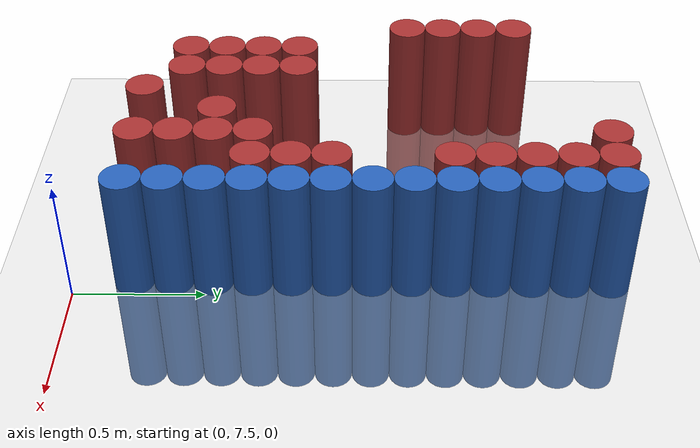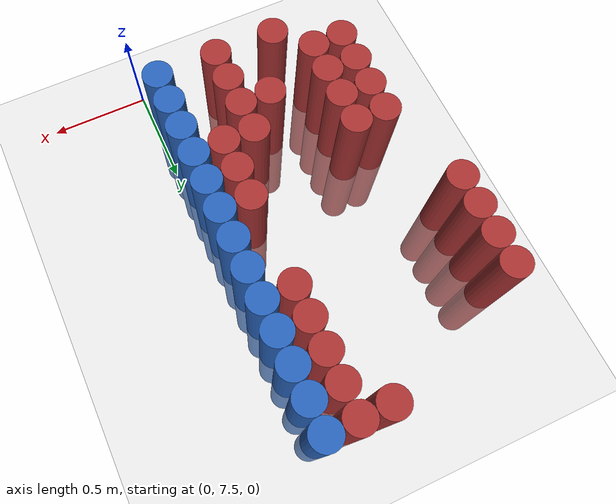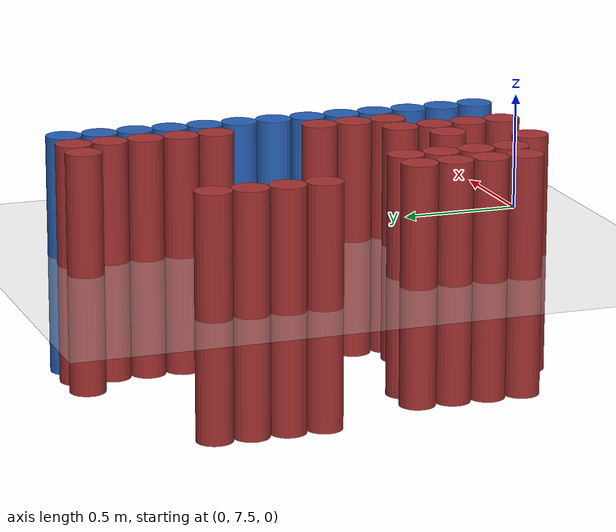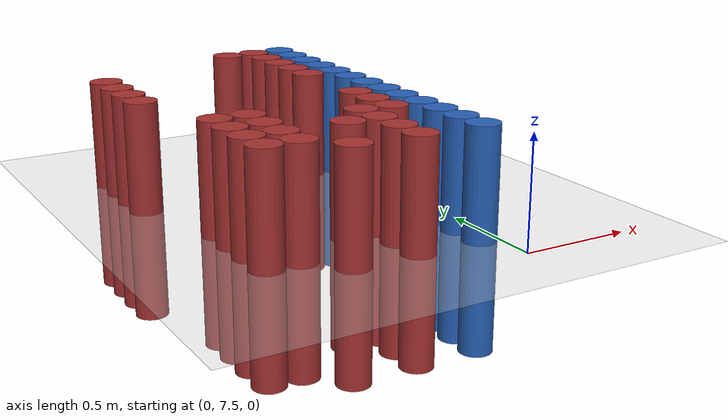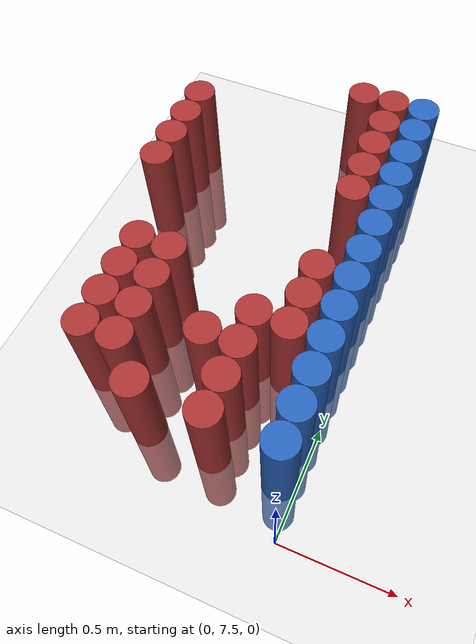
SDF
<sdf version="1.6">
 <world name="default">
  <model name="ground_plane">
   <static>1</static>
   <link name="link">
    <collision name="collision">
     <geometry><plane><normal>0 0 1</normal><size>100 100</size></plane></geometry>
     <surface><friction><ode><mu>100</mu><mu2>50</mu2></ode></friction></surface>
    </collision>
    <visual name="visual">
     <cast_shadows>0</cast_shadows>
     <geometry><plane><normal>0 0 1</normal><size>100 100</size></plane></geometry>
     <material>
      <script><uri>file://media/materials/scripts/gazebo.material</uri><name>Gazebo/Grey</name></script>
     </material>
    </visual>
   </link>
  </model>
  <model name="unit_cylinder_266">
   <static>1</static>
   <pose>-1.125000 8.775000 0.000000 0.000000 0.000000 0.000000</pose>
   <link name="link">
    <inertial>
     <mass>1</mass>
     <inertia><ixx>0.145833</ixx><ixy>0</ixy><ixz>0</ixz><iyy>0.145833</iyy><iyz>0</iyz><izz>0.125</izz></inertia>
    </inertial>
    <collision name="collision">
     <geometry><cylinder><radius>0.075000</radius><length>1</length></cylinder></geometry>
    </collision>
    <visual name="visual">
     <geometry><cylinder><radius>0.075000</radius><length>1</length></cylinder></geometry>
     <material>
      <ambient>0.648000 0.192000 0.192000 1</ambient>
      <diffuse>0.648000 0.192000 0.192000 1</diffuse>
     </material>
     <material>
      <script><name>Gazebo/Grey</name><uri>file://media/materials/scripts/gazebo.material</uri></script>
     </material>
    </visual>
    <sensor name="sensor_contact" type="contact"><contact><collision>collision</collision></contact></sensor>
   </link>
   <plugin filename="gz-sim-touchplugin-system" name="gz::sim::systems::TouchPlugin">
    <target>robot</target>
    <namespace>robot</namespace>
    <time>0.001</time>
    <enabled>true</enabled>
   </plugin>
  </model>
  <model name="unit_cylinder_267">
   <static>1</static>
   <pose>-1.125000 8.925000 0.000000 0.000000 0.000000 0.000000</pose>
   <link name="link">
    <inertial>
     <mass>1</mass>
     <inertia><ixx>0.145833</ixx><ixy>0</ixy><ixz>0</ixz><iyy>0.145833</iyy><iyz>0</iyz><izz>0.125</izz></inertia>
    </inertial>
    <collision name="collision">
     <geometry><cylinder><radius>0.075000</radius><length>1</length></cylinder></geometry>
    </collision>
    <visual name="visual">
     <geometry><cylinder><radius>0.075000</radius><length>1</length></cylinder></geometry>
     <material>
      <ambient>0.648000 0.192000 0.192000 1</ambient>
      <diffuse>0.648000 0.192000 0.192000 1</diffuse>
     </material>
     <material>
      <script><name>Gazebo/Grey</name><uri>file://media/materials/scripts/gazebo.material</uri></script>
     </material>
    </visual>
    <sensor name="sensor_contact" type="contact"><contact><collision>collision</collision></contact></sensor>
   </link>
   <plugin filename="gz-sim-touchplugin-system" name="gz::sim::systems::TouchPlugin">
    <target>robot</target>
    <namespace>robot</namespace>
    <time>0.001</time>
    <enabled>true</enabled>
   </plugin>
  </model>
  <model name="unit_cylinder_268">
   <static>1</static>
   <pose>-1.125000 9.075000 0.000000 0.000000 0.000000 0.000000</pose>
   <link name="link">
    <inertial>
     <mass>1</mass>
     <inertia><ixx>0.145833</ixx><ixy>0</ixy><ixz>0</ixz><iyy>0.145833</iyy><iyz>0</iyz><izz>0.125</izz></inertia>
    </inertial>
    <collision name="collision">
     <geometry><cylinder><radius>0.075000</radius><length>1</length></cylinder></geometry>
    </collision>
    <visual name="visual">
     <geometry><cylinder><radius>0.075000</radius><length>1</length></cylinder></geometry>
     <material>
      <ambient>0.648000 0.192000 0.192000 1</ambient>
      <diffuse>0.648000 0.192000 0.192000 1</diffuse>
     </material>
     <material>
      <script><name>Gazebo/Grey</name><uri>file://media/materials/scripts/gazebo.material</uri></script>
     </material>
    </visual>
    <sensor name="sensor_contact" type="contact"><contact><collision>collision</collision></contact></sensor>
   </link>
   <plugin filename="gz-sim-touchplugin-system" name="gz::sim::systems::TouchPlugin">
    <target>robot</target>
    <namespace>robot</namespace>
    <time>0.001</time>
    <enabled>true</enabled>
   </plugin>
  </model>
  <model name="unit_cylinder_269">
   <static>1</static>
   <pose>-1.125000 9.225000 0.000000 0.000000 0.000000 0.000000</pose>
   <link name="link">
    <inertial>
     <mass>1</mass>
     <inertia><ixx>0.145833</ixx><ixy>0</ixy><ixz>0</ixz><iyy>0.145833</iyy><iyz>0</iyz><izz>0.125</izz></inertia>
    </inertial>
    <collision name="collision">
     <geometry><cylinder><radius>0.075000</radius><length>1</length></cylinder></geometry>
    </collision>
    <visual name="visual">
     <geometry><cylinder><radius>0.075000</radius><length>1</length></cylinder></geometry>
     <material>
      <ambient>0.648000 0.192000 0.192000 1</ambient>
      <diffuse>0.648000 0.192000 0.192000 1</diffuse>
     </material>
     <material>
      <script><name>Gazebo/Grey</name><uri>file://media/materials/scripts/gazebo.material</uri></script>
     </material>
    </visual>
    <sensor name="sensor_contact" type="contact"><contact><collision>collision</collision></contact></sensor>
   </link>
   <plugin filename="gz-sim-touchplugin-system" name="gz::sim::systems::TouchPlugin">
    <target>robot</target>
    <namespace>robot</namespace>
    <time>0.001</time>
    <enabled>true</enabled>
   </plugin>
  </model>
  <model name="unit_cylinder_275">
   <static>1</static>
   <pose>-0.975000 7.875000 0.000000 0.000000 0.000000 0.000000</pose>
   <link name="link">
    <inertial>
     <mass>1</mass>
     <inertia><ixx>0.145833</ixx><ixy>0</ixy><ixz>0</ixz><iyy>0.145833</iyy><iyz>0</iyz><izz>0.125</izz></inertia>
    </inertial>
    <collision name="collision">
     <geometry><cylinder><radius>0.075000</radius><length>1</length></cylinder></geometry>
    </collision>
    <visual name="visual">
     <geometry><cylinder><radius>0.075000</radius><length>1</length></cylinder></geometry>
     <material>
      <ambient>0.648000 0.192000 0.192000 1</ambient>
      <diffuse>0.648000 0.192000 0.192000 1</diffuse>
     </material>
     <material>
      <script><name>Gazebo/Grey</name><uri>file://media/materials/scripts/gazebo.material</uri></script>
     </material>
    </visual>
    <sensor name="sensor_contact" type="contact"><contact><collision>collision</collision></contact></sensor>
   </link>
   <plugin filename="gz-sim-touchplugin-system" name="gz::sim::systems::TouchPlugin">
    <target>robot</target>
    <namespace>robot</namespace>
    <time>0.001</time>
    <enabled>true</enabled>
   </plugin>
  </model>
  <model name="unit_cylinder_276">
   <static>1</static>
   <pose>-0.975000 8.025000 0.000000 0.000000 0.000000 0.000000</pose>
   <link name="link">
    <inertial>
     <mass>1</mass>
     <inertia><ixx>0.145833</ixx><ixy>0</ixy><ixz>0</ixz><iyy>0.145833</iyy><iyz>0</iyz><izz>0.125</izz></inertia>
    </inertial>
    <collision name="collision">
     <geometry><cylinder><radius>0.075000</radius><length>1</length></cylinder></geometry>
    </collision>
    <visual name="visual">
     <geometry><cylinder><radius>0.075000</radius><length>1</length></cylinder></geometry>
     <material>
      <ambient>0.648000 0.192000 0.192000 1</ambient>
      <diffuse>0.648000 0.192000 0.192000 1</diffuse>
     </material>
     <material>
      <script><name>Gazebo/Grey</name><uri>file://media/materials/scripts/gazebo.material</uri></script>
     </material>
    </visual>
    <sensor name="sensor_contact" type="contact"><contact><collision>collision</collision></contact></sensor>
   </link>
   <plugin filename="gz-sim-touchplugin-system" name="gz::sim::systems::TouchPlugin">
    <target>robot</target>
    <namespace>robot</namespace>
    <time>0.001</time>
    <enabled>true</enabled>
   </plugin>
  </model>
  <model name="unit_cylinder_277">
   <static>1</static>
   <pose>-0.975000 8.175000 0.000000 0.000000 0.000000 0.000000</pose>
   <link name="link">
    <inertial>
     <mass>1</mass>
     <inertia><ixx>0.145833</ixx><ixy>0</ixy><ixz>0</ixz><iyy>0.145833</iyy><iyz>0</iyz><izz>0.125</izz></inertia>
    </inertial>
    <collision name="collision">
     <geometry><cylinder><radius>0.075000</radius><length>1</length></cylinder></geometry>
    </collision>
    <visual name="visual">
     <geometry><cylinder><radius>0.075000</radius><length>1</length></cylinder></geometry>
     <material>
      <ambient>0.648000 0.192000 0.192000 1</ambient>
      <diffuse>0.648000 0.192000 0.192000 1</diffuse>
     </material>
     <material>
      <script><name>Gazebo/Grey</name><uri>file://media/materials/scripts/gazebo.material</uri></script>
     </material>
    </visual>
    <sensor name="sensor_contact" type="contact"><contact><collision>collision</collision></contact></sensor>
   </link>
   <plugin filename="gz-sim-touchplugin-system" name="gz::sim::systems::TouchPlugin">
    <target>robot</target>
    <namespace>robot</namespace>
    <time>0.001</time>
    <enabled>true</enabled>
   </plugin>
  </model>
  <model name="unit_cylinder_278">
   <static>1</static>
   <pose>-0.975000 8.325000 0.000000 0.000000 0.000000 0.000000</pose>
   <link name="link">
    <inertial>
     <mass>1</mass>
     <inertia><ixx>0.145833</ixx><ixy>0</ixy><ixz>0</ixz><iyy>0.145833</iyy><iyz>0</iyz><izz>0.125</izz></inertia>
    </inertial>
    <collision name="collision">
     <geometry><cylinder><radius>0.075000</radius><length>1</length></cylinder></geometry>
    </collision>
    <visual name="visual">
     <geometry><cylinder><radius>0.075000</radius><length>1</length></cylinder></geometry>
     <material>
      <ambient>0.648000 0.192000 0.192000 1</ambient>
      <diffuse>0.648000 0.192000 0.192000 1</diffuse>
     </material>
     <material>
      <script><name>Gazebo/Grey</name><uri>file://media/materials/scripts/gazebo.material</uri></script>
     </material>
    </visual>
    <sensor name="sensor_contact" type="contact"><contact><collision>collision</collision></contact></sensor>
   </link>
   <plugin filename="gz-sim-touchplugin-system" name="gz::sim::systems::TouchPlugin">
    <target>robot</target>
    <namespace>robot</namespace>
    <time>0.001</time>
    <enabled>true</enabled>
   </plugin>
  </model>
  <model name="unit_cylinder_284">
   <static>1</static>
   <pose>-0.825000 7.875000 0.000000 0.000000 0.000000 0.000000</pose>
   <link name="link">
    <inertial>
     <mass>1</mass>
     <inertia><ixx>0.145833</ixx><ixy>0</ixy><ixz>0</ixz><iyy>0.145833</iyy><iyz>0</iyz><izz>0.125</izz></inertia>
    </inertial>
    <collision name="collision">
     <geometry><cylinder><radius>0.075000</radius><length>1</length></cylinder></geometry>
    </collision>
    <visual name="visual">
     <geometry><cylinder><radius>0.075000</radius><length>1</length></cylinder></geometry>
     <material>
      <ambient>0.648000 0.192000 0.192000 1</ambient>
      <diffuse>0.648000 0.192000 0.192000 1</diffuse>
     </material>
     <material>
      <script><name>Gazebo/Grey</name><uri>file://media/materials/scripts/gazebo.material</uri></script>
     </material>
    </visual>
    <sensor name="sensor_contact" type="contact"><contact><collision>collision</collision></contact></sensor>
   </link>
   <plugin filename="gz-sim-touchplugin-system" name="gz::sim::systems::TouchPlugin">
    <target>robot</target>
    <namespace>robot</namespace>
    <time>0.001</time>
    <enabled>true</enabled>
   </plugin>
  </model>
  <model name="unit_cylinder_285">
   <static>1</static>
   <pose>-0.825000 8.025000 0.000000 0.000000 0.000000 0.000000</pose>
   <link name="link">
    <inertial>
     <mass>1</mass>
     <inertia><ixx>0.145833</ixx><ixy>0</ixy><ixz>0</ixz><iyy>0.145833</iyy><iyz>0</iyz><izz>0.125</izz></inertia>
    </inertial>
    <collision name="collision">
     <geometry><cylinder><radius>0.075000</radius><length>1</length></cylinder></geometry>
    </collision>
    <visual name="visual">
     <geometry><cylinder><radius>0.075000</radius><length>1</length></cylinder></geometry>
     <material>
      <ambient>0.648000 0.192000 0.192000 1</ambient>
      <diffuse>0.648000 0.192000 0.192000 1</diffuse>
     </material>
     <material>
      <script><name>Gazebo/Grey</name><uri>file://media/materials/scripts/gazebo.material</uri></script>
     </material>
    </visual>
    <sensor name="sensor_contact" type="contact"><contact><collision>collision</collision></contact></sensor>
   </link>
   <plugin filename="gz-sim-touchplugin-system" name="gz::sim::systems::TouchPlugin">
    <target>robot</target>
    <namespace>robot</namespace>
    <time>0.001</time>
    <enabled>true</enabled>
   </plugin>
  </model>
  <model name="unit_cylinder_286">
   <static>1</static>
   <pose>-0.825000 8.175000 0.000000 0.000000 0.000000 0.000000</pose>
   <link name="link">
    <inertial>
     <mass>1</mass>
     <inertia><ixx>0.145833</ixx><ixy>0</ixy><ixz>0</ixz><iyy>0.145833</iyy><iyz>0</iyz><izz>0.125</izz></inertia>
    </inertial>
    <collision name="collision">
     <geometry><cylinder><radius>0.075000</radius><length>1</length></cylinder></geometry>
    </collision>
    <visual name="visual">
     <geometry><cylinder><radius>0.075000</radius><length>1</length></cylinder></geometry>
     <material>
      <ambient>0.648000 0.192000 0.192000 1</ambient>
      <diffuse>0.648000 0.192000 0.192000 1</diffuse>
     </material>
     <material>
      <script><name>Gazebo/Grey</name><uri>file://media/materials/scripts/gazebo.material</uri></script>
     </material>
    </visual>
    <sensor name="sensor_contact" type="contact"><contact><collision>collision</collision></contact></sensor>
   </link>
   <plugin filename="gz-sim-touchplugin-system" name="gz::sim::systems::TouchPlugin">
    <target>robot</target>
    <namespace>robot</namespace>
    <time>0.001</time>
    <enabled>true</enabled>
   </plugin>
  </model>
  <model name="unit_cylinder_287">
   <static>1</static>
   <pose>-0.825000 8.325000 0.000000 0.000000 0.000000 0.000000</pose>
   <link name="link">
    <inertial>
     <mass>1</mass>
     <inertia><ixx>0.145833</ixx><ixy>0</ixy><ixz>0</ixz><iyy>0.145833</iyy><iyz>0</iyz><izz>0.125</izz></inertia>
    </inertial>
    <collision name="collision">
     <geometry><cylinder><radius>0.075000</radius><length>1</length></cylinder></geometry>
    </collision>
    <visual name="visual">
     <geometry><cylinder><radius>0.075000</radius><length>1</length></cylinder></geometry>
     <material>
      <ambient>0.648000 0.192000 0.192000 1</ambient>
      <diffuse>0.648000 0.192000 0.192000 1</diffuse>
     </material>
     <material>
      <script><name>Gazebo/Grey</name><uri>file://media/materials/scripts/gazebo.material</uri></script>
     </material>
    </visual>
    <sensor name="sensor_contact" type="contact"><contact><collision>collision</collision></contact></sensor>
   </link>
   <plugin filename="gz-sim-touchplugin-system" name="gz::sim::systems::TouchPlugin">
    <target>robot</target>
    <namespace>robot</namespace>
    <time>0.001</time>
    <enabled>true</enabled>
   </plugin>
  </model>
  <model name="unit_cylinder_289">
   <static>1</static>
   <pose>-0.675000 7.725000 0.000000 0.000000 0.000000 0.000000</pose>
   <link name="link">
    <inertial>
     <mass>1</mass>
     <inertia><ixx>0.145833</ixx><ixy>0</ixy><ixz>0</ixz><iyy>0.145833</iyy><iyz>0</iyz><izz>0.125</izz></inertia>
    </inertial>
    <collision name="collision">
     <geometry><cylinder><radius>0.075000</radius><length>1</length></cylinder></geometry>
    </collision>
    <visual name="visual">
     <geometry><cylinder><radius>0.075000</radius><length>1</length></cylinder></geometry>
     <material>
      <ambient>0.648000 0.192000 0.192000 1</ambient>
      <diffuse>0.648000 0.192000 0.192000 1</diffuse>
     </material>
     <material>
      <script><name>Gazebo/Grey</name><uri>file://media/materials/scripts/gazebo.material</uri></script>
     </material>
    </visual>
    <sensor name="sensor_contact" type="contact"><contact><collision>collision</collision></contact></sensor>
   </link>
   <plugin filename="gz-sim-touchplugin-system" name="gz::sim::systems::TouchPlugin">
    <target>robot</target>
    <namespace>robot</namespace>
    <time>0.001</time>
    <enabled>true</enabled>
   </plugin>
  </model>
  <model name="unit_cylinder_296">
   <static>1</static>
   <pose>-0.525000 8.025000 0.000000 0.000000 0.000000 0.000000</pose>
   <link name="link">
    <inertial>
     <mass>1</mass>
     <inertia><ixx>0.145833</ixx><ixy>0</ixy><ixz>0</ixz><iyy>0.145833</iyy><iyz>0</iyz><izz>0.125</izz></inertia>
    </inertial>
    <collision name="collision">
     <geometry><cylinder><radius>0.075000</radius><length>1</length></cylinder></geometry>
    </collision>
    <visual name="visual">
     <geometry><cylinder><radius>0.075000</radius><length>1</length></cylinder></geometry>
     <material>
      <ambient>0.648000 0.192000 0.192000 1</ambient>
      <diffuse>0.648000 0.192000 0.192000 1</diffuse>
     </material>
     <material>
      <script><name>Gazebo/Grey</name><uri>file://media/materials/scripts/gazebo.material</uri></script>
     </material>
    </visual>
    <sensor name="sensor_contact" type="contact"><contact><collision>collision</collision></contact></sensor>
   </link>
   <plugin filename="gz-sim-touchplugin-system" name="gz::sim::systems::TouchPlugin">
    <target>robot</target>
    <namespace>robot</namespace>
    <time>0.001</time>
    <enabled>true</enabled>
   </plugin>
  </model>
  <model name="unit_cylinder_307">
   <static>1</static>
   <pose>-0.375000 7.725000 0.000000 0.000000 0.000000 0.000000</pose>
   <link name="link">
    <inertial>
     <mass>1</mass>
     <inertia><ixx>0.145833</ixx><ixy>0</ixy><ixz>0</ixz><iyy>0.145833</iyy><iyz>0</iyz><izz>0.125</izz></inertia>
    </inertial>
    <collision name="collision">
     <geometry><cylinder><radius>0.075000</radius><length>1</length></cylinder></geometry>
    </collision>
    <visual name="visual">
     <geometry><cylinder><radius>0.075000</radius><length>1</length></cylinder></geometry>
     <material>
      <ambient>0.648000 0.192000 0.192000 1</ambient>
      <diffuse>0.648000 0.192000 0.192000 1</diffuse>
     </material>
     <material>
      <script><name>Gazebo/Grey</name><uri>file://media/materials/scripts/gazebo.material</uri></script>
     </material>
    </visual>
    <sensor name="sensor_contact" type="contact"><contact><collision>collision</collision></contact></sensor>
   </link>
   <plugin filename="gz-sim-touchplugin-system" name="gz::sim::systems::TouchPlugin">
    <target>robot</target>
    <namespace>robot</namespace>
    <time>0.001</time>
    <enabled>true</enabled>
   </plugin>
  </model>
  <model name="unit_cylinder_308">
   <static>1</static>
   <pose>-0.375000 7.875000 0.000000 0.000000 0.000000 0.000000</pose>
   <link name="link">
    <inertial>
     <mass>1</mass>
     <inertia><ixx>0.145833</ixx><ixy>0</ixy><ixz>0</ixz><iyy>0.145833</iyy><iyz>0</iyz><izz>0.125</izz></inertia>
    </inertial>
    <collision name="collision">
     <geometry><cylinder><radius>0.075000</radius><length>1</length></cylinder></geometry>
    </collision>
    <visual name="visual">
     <geometry><cylinder><radius>0.075000</radius><length>1</length></cylinder></geometry>
     <material>
      <ambient>0.648000 0.192000 0.192000 1</ambient>
      <diffuse>0.648000 0.192000 0.192000 1</diffuse>
     </material>
     <material>
      <script><name>Gazebo/Grey</name><uri>file://media/materials/scripts/gazebo.material</uri></script>
     </material>
    </visual>
    <sensor name="sensor_contact" type="contact"><contact><collision>collision</collision></contact></sensor>
   </link>
   <plugin filename="gz-sim-touchplugin-system" name="gz::sim::systems::TouchPlugin">
    <target>robot</target>
    <namespace>robot</namespace>
    <time>0.001</time>
    <enabled>true</enabled>
   </plugin>
  </model>
  <model name="unit_cylinder_309">
   <static>1</static>
   <pose>-0.375000 8.025000 0.000000 0.000000 0.000000 0.000000</pose>
   <link name="link">
    <inertial>
     <mass>1</mass>
     <inertia><ixx>0.145833</ixx><ixy>0</ixy><ixz>0</ixz><iyy>0.145833</iyy><iyz>0</iyz><izz>0.125</izz></inertia>
    </inertial>
    <collision name="collision">
     <geometry><cylinder><radius>0.075000</radius><length>1</length></cylinder></geometry>
    </collision>
    <visual name="visual">
     <geometry><cylinder><radius>0.075000</radius><length>1</length></cylinder></geometry>
     <material>
      <ambient>0.648000 0.192000 0.192000 1</ambient>
      <diffuse>0.648000 0.192000 0.192000 1</diffuse>
     </material>
     <material>
      <script><name>Gazebo/Grey</name><uri>file://media/materials/scripts/gazebo.material</uri></script>
     </material>
    </visual>
    <sensor name="sensor_contact" type="contact"><contact><collision>collision</collision></contact></sensor>
   </link>
   <plugin filename="gz-sim-touchplugin-system" name="gz::sim::systems::TouchPlugin">
    <target>robot</target>
    <namespace>robot</namespace>
    <time>0.001</time>
    <enabled>true</enabled>
   </plugin>
  </model>
  <model name="unit_cylinder_310">
   <static>1</static>
   <pose>-0.375000 8.175000 0.000000 0.000000 0.000000 0.000000</pose>
   <link name="link">
    <inertial>
     <mass>1</mass>
     <inertia><ixx>0.145833</ixx><ixy>0</ixy><ixz>0</ixz><iyy>0.145833</iyy><iyz>0</iyz><izz>0.125</izz></inertia>
    </inertial>
    <collision name="collision">
     <geometry><cylinder><radius>0.075000</radius><length>1</length></cylinder></geometry>
    </collision>
    <visual name="visual">
     <geometry><cylinder><radius>0.075000</radius><length>1</length></cylinder></geometry>
     <material>
      <ambient>0.648000 0.192000 0.192000 1</ambient>
      <diffuse>0.648000 0.192000 0.192000 1</diffuse>
     </material>
     <material>
      <script><name>Gazebo/Grey</name><uri>file://media/materials/scripts/gazebo.material</uri></script>
     </material>
    </visual>
    <sensor name="sensor_contact" type="contact"><contact><collision>collision</collision></contact></sensor>
   </link>
   <plugin filename="gz-sim-touchplugin-system" name="gz::sim::systems::TouchPlugin">
    <target>robot</target>
    <namespace>robot</namespace>
    <time>0.001</time>
    <enabled>true</enabled>
   </plugin>
  </model>
  <model name="unit_cylinder_311">
   <static>1</static>
   <pose>-0.375000 9.525000 0.000000 0.000000 0.000000 0.000000</pose>
   <link name="link">
    <inertial>
     <mass>1</mass>
     <inertia><ixx>0.145833</ixx><ixy>0</ixy><ixz>0</ixz><iyy>0.145833</iyy><iyz>0</iyz><izz>0.125</izz></inertia>
    </inertial>
    <collision name="collision">
     <geometry><cylinder><radius>0.075000</radius><length>1</length></cylinder></geometry>
    </collision>
    <visual name="visual">
     <geometry><cylinder><radius>0.075000</radius><length>1</length></cylinder></geometry>
     <material>
      <ambient>0.648000 0.192000 0.192000 1</ambient>
      <diffuse>0.648000 0.192000 0.192000 1</diffuse>
     </material>
     <material>
      <script><name>Gazebo/Grey</name><uri>file://media/materials/scripts/gazebo.material</uri></script>
     </material>
    </visual>
    <sensor name="sensor_contact" type="contact"><contact><collision>collision</collision></contact></sensor>
   </link>
   <plugin filename="gz-sim-touchplugin-system" name="gz::sim::systems::TouchPlugin">
    <target>robot</target>
    <namespace>robot</namespace>
    <time>0.001</time>
    <enabled>true</enabled>
   </plugin>
  </model>
  <model name="unit_cylinder_323">
   <static>1</static>
   <pose>-0.225000 8.175000 0.000000 0.000000 0.000000 0.000000</pose>
   <link name="link">
    <inertial>
     <mass>1</mass>
     <inertia><ixx>0.145833</ixx><ixy>0</ixy><ixz>0</ixz><iyy>0.145833</iyy><iyz>0</iyz><izz>0.125</izz></inertia>
    </inertial>
    <collision name="collision">
     <geometry><cylinder><radius>0.075000</radius><length>1</length></cylinder></geometry>
    </collision>
    <visual name="visual">
     <geometry><cylinder><radius>0.075000</radius><length>1</length></cylinder></geometry>
     <material>
      <ambient>0.648000 0.192000 0.192000 1</ambient>
      <diffuse>0.648000 0.192000 0.192000 1</diffuse>
     </material>
     <material>
      <script><name>Gazebo/Grey</name><uri>file://media/materials/scripts/gazebo.material</uri></script>
     </material>
    </visual>
    <sensor name="sensor_contact" type="contact"><contact><collision>collision</collision></contact></sensor>
   </link>
   <plugin filename="gz-sim-touchplugin-system" name="gz::sim::systems::TouchPlugin">
    <target>robot</target>
    <namespace>robot</namespace>
    <time>0.001</time>
    <enabled>true</enabled>
   </plugin>
  </model>
  <model name="unit_cylinder_324">
   <static>1</static>
   <pose>-0.225000 8.325000 0.000000 0.000000 0.000000 0.000000</pose>
   <link name="link">
    <inertial>
     <mass>1</mass>
     <inertia><ixx>0.145833</ixx><ixy>0</ixy><ixz>0</ixz><iyy>0.145833</iyy><iyz>0</iyz><izz>0.125</izz></inertia>
    </inertial>
    <collision name="collision">
     <geometry><cylinder><radius>0.075000</radius><length>1</length></cylinder></geometry>
    </collision>
    <visual name="visual">
     <geometry><cylinder><radius>0.075000</radius><length>1</length></cylinder></geometry>
     <material>
      <ambient>0.648000 0.192000 0.192000 1</ambient>
      <diffuse>0.648000 0.192000 0.192000 1</diffuse>
     </material>
     <material>
      <script><name>Gazebo/Grey</name><uri>file://media/materials/scripts/gazebo.material</uri></script>
     </material>
    </visual>
    <sensor name="sensor_contact" type="contact"><contact><collision>collision</collision></contact></sensor>
   </link>
   <plugin filename="gz-sim-touchplugin-system" name="gz::sim::systems::TouchPlugin">
    <target>robot</target>
    <namespace>robot</namespace>
    <time>0.001</time>
    <enabled>true</enabled>
   </plugin>
  </model>
  <model name="unit_cylinder_325">
   <static>1</static>
   <pose>-0.225000 8.475000 0.000000 0.000000 0.000000 0.000000</pose>
   <link name="link">
    <inertial>
     <mass>1</mass>
     <inertia><ixx>0.145833</ixx><ixy>0</ixy><ixz>0</ixz><iyy>0.145833</iyy><iyz>0</iyz><izz>0.125</izz></inertia>
    </inertial>
    <collision name="collision">
     <geometry><cylinder><radius>0.075000</radius><length>1</length></cylinder></geometry>
    </collision>
    <visual name="visual">
     <geometry><cylinder><radius>0.075000</radius><length>1</length></cylinder></geometry>
     <material>
      <ambient>0.648000 0.192000 0.192000 1</ambient>
      <diffuse>0.648000 0.192000 0.192000 1</diffuse>
     </material>
     <material>
      <script><name>Gazebo/Grey</name><uri>file://media/materials/scripts/gazebo.material</uri></script>
     </material>
    </visual>
    <sensor name="sensor_contact" type="contact"><contact><collision>collision</collision></contact></sensor>
   </link>
   <plugin filename="gz-sim-touchplugin-system" name="gz::sim::systems::TouchPlugin">
    <target>robot</target>
    <namespace>robot</namespace>
    <time>0.001</time>
    <enabled>true</enabled>
   </plugin>
  </model>
  <model name="unit_cylinder_326">
   <static>1</static>
   <pose>-0.225000 8.925000 0.000000 0.000000 0.000000 0.000000</pose>
   <link name="link">
    <inertial>
     <mass>1</mass>
     <inertia><ixx>0.145833</ixx><ixy>0</ixy><ixz>0</ixz><iyy>0.145833</iyy><iyz>0</iyz><izz>0.125</izz></inertia>
    </inertial>
    <collision name="collision">
     <geometry><cylinder><radius>0.075000</radius><length>1</length></cylinder></geometry>
    </collision>
    <visual name="visual">
     <geometry><cylinder><radius>0.075000</radius><length>1</length></cylinder></geometry>
     <material>
      <ambient>0.648000 0.192000 0.192000 1</ambient>
      <diffuse>0.648000 0.192000 0.192000 1</diffuse>
     </material>
     <material>
      <script><name>Gazebo/Grey</name><uri>file://media/materials/scripts/gazebo.material</uri></script>
     </material>
    </visual>
    <sensor name="sensor_contact" type="contact"><contact><collision>collision</collision></contact></sensor>
   </link>
   <plugin filename="gz-sim-touchplugin-system" name="gz::sim::systems::TouchPlugin">
    <target>robot</target>
    <namespace>robot</namespace>
    <time>0.001</time>
    <enabled>true</enabled>
   </plugin>
  </model>
  <model name="unit_cylinder_327">
   <static>1</static>
   <pose>-0.225000 9.075000 0.000000 0.000000 0.000000 0.000000</pose>
   <link name="link">
    <inertial>
     <mass>1</mass>
     <inertia><ixx>0.145833</ixx><ixy>0</ixy><ixz>0</ixz><iyy>0.145833</iyy><iyz>0</iyz><izz>0.125</izz></inertia>
    </inertial>
    <collision name="collision">
     <geometry><cylinder><radius>0.075000</radius><length>1</length></cylinder></geometry>
    </collision>
    <visual name="visual">
     <geometry><cylinder><radius>0.075000</radius><length>1</length></cylinder></geometry>
     <material>
      <ambient>0.648000 0.192000 0.192000 1</ambient>
      <diffuse>0.648000 0.192000 0.192000 1</diffuse>
     </material>
     <material>
      <script><name>Gazebo/Grey</name><uri>file://media/materials/scripts/gazebo.material</uri></script>
     </material>
    </visual>
    <sensor name="sensor_contact" type="contact"><contact><collision>collision</collision></contact></sensor>
   </link>
   <plugin filename="gz-sim-touchplugin-system" name="gz::sim::systems::TouchPlugin">
    <target>robot</target>
    <namespace>robot</namespace>
    <time>0.001</time>
    <enabled>true</enabled>
   </plugin>
  </model>
  <model name="unit_cylinder_328">
   <static>1</static>
   <pose>-0.225000 9.225000 0.000000 0.000000 0.000000 0.000000</pose>
   <link name="link">
    <inertial>
     <mass>1</mass>
     <inertia><ixx>0.145833</ixx><ixy>0</ixy><ixz>0</ixz><iyy>0.145833</iyy><iyz>0</iyz><izz>0.125</izz></inertia>
    </inertial>
    <collision name="collision">
     <geometry><cylinder><radius>0.075000</radius><length>1</length></cylinder></geometry>
    </collision>
    <visual name="visual">
     <geometry><cylinder><radius>0.075000</radius><length>1</length></cylinder></geometry>
     <material>
      <ambient>0.648000 0.192000 0.192000 1</ambient>
      <diffuse>0.648000 0.192000 0.192000 1</diffuse>
     </material>
     <material>
      <script><name>Gazebo/Grey</name><uri>file://media/materials/scripts/gazebo.material</uri></script>
     </material>
    </visual>
    <sensor name="sensor_contact" type="contact"><contact><collision>collision</collision></contact></sensor>
   </link>
   <plugin filename="gz-sim-touchplugin-system" name="gz::sim::systems::TouchPlugin">
    <target>robot</target>
    <namespace>robot</namespace>
    <time>0.001</time>
    <enabled>true</enabled>
   </plugin>
  </model>
  <model name="unit_cylinder_329">
   <static>1</static>
   <pose>-0.225000 9.375000 0.000000 0.000000 0.000000 0.000000</pose>
   <link name="link">
    <inertial>
     <mass>1</mass>
     <inertia><ixx>0.145833</ixx><ixy>0</ixy><ixz>0</ixz><iyy>0.145833</iyy><iyz>0</iyz><izz>0.125</izz></inertia>
    </inertial>
    <collision name="collision">
     <geometry><cylinder><radius>0.075000</radius><length>1</length></cylinder></geometry>
    </collision>
    <visual name="visual">
     <geometry><cylinder><radius>0.075000</radius><length>1</length></cylinder></geometry>
     <material>
      <ambient>0.648000 0.192000 0.192000 1</ambient>
      <diffuse>0.648000 0.192000 0.192000 1</diffuse>
     </material>
     <material>
      <script><name>Gazebo/Grey</name><uri>file://media/materials/scripts/gazebo.material</uri></script>
     </material>
    </visual>
    <sensor name="sensor_contact" type="contact"><contact><collision>collision</collision></contact></sensor>
   </link>
   <plugin filename="gz-sim-touchplugin-system" name="gz::sim::systems::TouchPlugin">
    <target>robot</target>
    <namespace>robot</namespace>
    <time>0.001</time>
    <enabled>true</enabled>
   </plugin>
  </model>
  <model name="unit_cylinder_330">
   <static>1</static>
   <pose>-0.225000 9.525000 0.000000 0.000000 0.000000 0.000000</pose>
   <link name="link">
    <inertial>
     <mass>1</mass>
     <inertia><ixx>0.145833</ixx><ixy>0</ixy><ixz>0</ixz><iyy>0.145833</iyy><iyz>0</iyz><izz>0.125</izz></inertia>
    </inertial>
    <collision name="collision">
     <geometry><cylinder><radius>0.075000</radius><length>1</length></cylinder></geometry>
    </collision>
    <visual name="visual">
     <geometry><cylinder><radius>0.075000</radius><length>1</length></cylinder></geometry>
     <material>
      <ambient>0.648000 0.192000 0.192000 1</ambient>
      <diffuse>0.648000 0.192000 0.192000 1</diffuse>
     </material>
     <material>
      <script><name>Gazebo/Grey</name><uri>file://media/materials/scripts/gazebo.material</uri></script>
     </material>
    </visual>
    <sensor name="sensor_contact" type="contact"><contact><collision>collision</collision></contact></sensor>
   </link>
   <plugin filename="gz-sim-touchplugin-system" name="gz::sim::systems::TouchPlugin">
    <target>robot</target>
    <namespace>robot</namespace>
    <time>0.001</time>
    <enabled>true</enabled>
   </plugin>
  </model>
  <model name="unit_cylinder_348">
   <static>1</static>
   <pose>-0.075000 7.725000 0.000000 0.000000 0.000000 0.000000</pose>
   <link name="link">
    <inertial>
     <mass>1</mass>
     <inertia><ixx>0.145833</ixx><ixy>0</ixy><ixz>0</ixz><iyy>0.145833</iyy><iyz>0</iyz><izz>0.125</izz></inertia>
    </inertial>
    <collision name="collision">
     <geometry><cylinder><radius>0.075000</radius><length>1</length></cylinder></geometry>
    </collision>
    <visual name="visual">
     <geometry><cylinder><radius>0.075000</radius><length>1</length></cylinder></geometry>
     <material>
      <ambient>0.152000 0.379000 0.720000 1</ambient>
      <diffuse>0.152000 0.379000 0.720000 1</diffuse>
     </material>
     <material>
      <script><name>Gazebo/Grey</name><uri>file://media/materials/scripts/gazebo.material</uri></script>
     </material>
    </visual>
    <sensor name="sensor_contact" type="contact"><contact><collision>collision</collision></contact></sensor>
   </link>
   <plugin filename="gz-sim-touchplugin-system" name="gz::sim::systems::TouchPlugin">
    <target>robot</target>
    <namespace>robot</namespace>
    <time>0.001</time>
    <enabled>true</enabled>
   </plugin>
  </model>
  <model name="unit_cylinder_349">
   <static>1</static>
   <pose>-0.075000 7.875000 0.000000 0.000000 0.000000 0.000000</pose>
   <link name="link">
    <inertial>
     <mass>1</mass>
     <inertia><ixx>0.145833</ixx><ixy>0</ixy><ixz>0</ixz><iyy>0.145833</iyy><iyz>0</iyz><izz>0.125</izz></inertia>
    </inertial>
    <collision name="collision">
     <geometry><cylinder><radius>0.075000</radius><length>1</length></cylinder></geometry>
    </collision>
    <visual name="visual">
     <geometry><cylinder><radius>0.075000</radius><length>1</length></cylinder></geometry>
     <material>
      <ambient>0.152000 0.379000 0.720000 1</ambient>
      <diffuse>0.152000 0.379000 0.720000 1</diffuse>
     </material>
     <material>
      <script><name>Gazebo/Grey</name><uri>file://media/materials/scripts/gazebo.material</uri></script>
     </material>
    </visual>
    <sensor name="sensor_contact" type="contact"><contact><collision>collision</collision></contact></sensor>
   </link>
   <plugin filename="gz-sim-touchplugin-system" name="gz::sim::systems::TouchPlugin">
    <target>robot</target>
    <namespace>robot</namespace>
    <time>0.001</time>
    <enabled>true</enabled>
   </plugin>
  </model>
  <model name="unit_cylinder_350">
   <static>1</static>
   <pose>-0.075000 8.025000 0.000000 0.000000 0.000000 0.000000</pose>
   <link name="link">
    <inertial>
     <mass>1</mass>
     <inertia><ixx>0.145833</ixx><ixy>0</ixy><ixz>0</ixz><iyy>0.145833</iyy><iyz>0</iyz><izz>0.125</izz></inertia>
    </inertial>
    <collision name="collision">
     <geometry><cylinder><radius>0.075000</radius><length>1</length></cylinder></geometry>
    </collision>
    <visual name="visual">
     <geometry><cylinder><radius>0.075000</radius><length>1</length></cylinder></geometry>
     <material>
      <ambient>0.152000 0.379000 0.720000 1</ambient>
      <diffuse>0.152000 0.379000 0.720000 1</diffuse>
     </material>
     <material>
      <script><name>Gazebo/Grey</name><uri>file://media/materials/scripts/gazebo.material</uri></script>
     </material>
    </visual>
    <sensor name="sensor_contact" type="contact"><contact><collision>collision</collision></contact></sensor>
   </link>
   <plugin filename="gz-sim-touchplugin-system" name="gz::sim::systems::TouchPlugin">
    <target>robot</target>
    <namespace>robot</namespace>
    <time>0.001</time>
    <enabled>true</enabled>
   </plugin>
  </model>
  <model name="unit_cylinder_351">
   <static>1</static>
   <pose>-0.075000 8.175000 0.000000 0.000000 0.000000 0.000000</pose>
   <link name="link">
    <inertial>
     <mass>1</mass>
     <inertia><ixx>0.145833</ixx><ixy>0</ixy><ixz>0</ixz><iyy>0.145833</iyy><iyz>0</iyz><izz>0.125</izz></inertia>
    </inertial>
    <collision name="collision">
     <geometry><cylinder><radius>0.075000</radius><length>1</length></cylinder></geometry>
    </collision>
    <visual name="visual">
     <geometry><cylinder><radius>0.075000</radius><length>1</length></cylinder></geometry>
     <material>
      <ambient>0.152000 0.379000 0.720000 1</ambient>
      <diffuse>0.152000 0.379000 0.720000 1</diffuse>
     </material>
     <material>
      <script><name>Gazebo/Grey</name><uri>file://media/materials/scripts/gazebo.material</uri></script>
     </material>
    </visual>
    <sensor name="sensor_contact" type="contact"><contact><collision>collision</collision></contact></sensor>
   </link>
   <plugin filename="gz-sim-touchplugin-system" name="gz::sim::systems::TouchPlugin">
    <target>robot</target>
    <namespace>robot</namespace>
    <time>0.001</time>
    <enabled>true</enabled>
   </plugin>
  </model>
  <model name="unit_cylinder_352">
   <static>1</static>
   <pose>-0.075000 8.325000 0.000000 0.000000 0.000000 0.000000</pose>
   <link name="link">
    <inertial>
     <mass>1</mass>
     <inertia><ixx>0.145833</ixx><ixy>0</ixy><ixz>0</ixz><iyy>0.145833</iyy><iyz>0</iyz><izz>0.125</izz></inertia>
    </inertial>
    <collision name="collision">
     <geometry><cylinder><radius>0.075000</radius><length>1</length></cylinder></geometry>
    </collision>
    <visual name="visual">
     <geometry><cylinder><radius>0.075000</radius><length>1</length></cylinder></geometry>
     <material>
      <ambient>0.152000 0.379000 0.720000 1</ambient>
      <diffuse>0.152000 0.379000 0.720000 1</diffuse>
     </material>
     <material>
      <script><name>Gazebo/Grey</name><uri>file://media/materials/scripts/gazebo.material</uri></script>
     </material>
    </visual>
    <sensor name="sensor_contact" type="contact"><contact><collision>collision</collision></contact></sensor>
   </link>
   <plugin filename="gz-sim-touchplugin-system" name="gz::sim::systems::TouchPlugin">
    <target>robot</target>
    <namespace>robot</namespace>
    <time>0.001</time>
    <enabled>true</enabled>
   </plugin>
  </model>
  <model name="unit_cylinder_353">
   <static>1</static>
   <pose>-0.075000 8.475000 0.000000 0.000000 0.000000 0.000000</pose>
   <link name="link">
    <inertial>
     <mass>1</mass>
     <inertia><ixx>0.145833</ixx><ixy>0</ixy><ixz>0</ixz><iyy>0.145833</iyy><iyz>0</iyz><izz>0.125</izz></inertia>
    </inertial>
    <collision name="collision">
     <geometry><cylinder><radius>0.075000</radius><length>1</length></cylinder></geometry>
    </collision>
    <visual name="visual">
     <geometry><cylinder><radius>0.075000</radius><length>1</length></cylinder></geometry>
     <material>
      <ambient>0.152000 0.379000 0.720000 1</ambient>
      <diffuse>0.152000 0.379000 0.720000 1</diffuse>
     </material>
     <material>
      <script><name>Gazebo/Grey</name><uri>file://media/materials/scripts/gazebo.material</uri></script>
     </material>
    </visual>
    <sensor name="sensor_contact" type="contact"><contact><collision>collision</collision></contact></sensor>
   </link>
   <plugin filename="gz-sim-touchplugin-system" name="gz::sim::systems::TouchPlugin">
    <target>robot</target>
    <namespace>robot</namespace>
    <time>0.001</time>
    <enabled>true</enabled>
   </plugin>
  </model>
  <model name="unit_cylinder_354">
   <static>1</static>
   <pose>-0.075000 8.625000 0.000000 0.000000 0.000000 0.000000</pose>
   <link name="link">
    <inertial>
     <mass>1</mass>
     <inertia><ixx>0.145833</ixx><ixy>0</ixy><ixz>0</ixz><iyy>0.145833</iyy><iyz>0</iyz><izz>0.125</izz></inertia>
    </inertial>
    <collision name="collision">
     <geometry><cylinder><radius>0.075000</radius><length>1</length></cylinder></geometry>
    </collision>
    <visual name="visual">
     <geometry><cylinder><radius>0.075000</radius><length>1</length></cylinder></geometry>
     <material>
      <ambient>0.152000 0.379000 0.720000 1</ambient>
      <diffuse>0.152000 0.379000 0.720000 1</diffuse>
     </material>
     <material>
      <script><name>Gazebo/Grey</name><uri>file://media/materials/scripts/gazebo.material</uri></script>
     </material>
    </visual>
    <sensor name="sensor_contact" type="contact"><contact><collision>collision</collision></contact></sensor>
   </link>
   <plugin filename="gz-sim-touchplugin-system" name="gz::sim::systems::TouchPlugin">
    <target>robot</target>
    <namespace>robot</namespace>
    <time>0.001</time>
    <enabled>true</enabled>
   </plugin>
  </model>
  <model name="unit_cylinder_355">
   <static>1</static>
   <pose>-0.075000 8.775000 0.000000 0.000000 0.000000 0.000000</pose>
   <link name="link">
    <inertial>
     <mass>1</mass>
     <inertia><ixx>0.145833</ixx><ixy>0</ixy><ixz>0</ixz><iyy>0.145833</iyy><iyz>0</iyz><izz>0.125</izz></inertia>
    </inertial>
    <collision name="collision">
     <geometry><cylinder><radius>0.075000</radius><length>1</length></cylinder></geometry>
    </collision>
    <visual name="visual">
     <geometry><cylinder><radius>0.075000</radius><length>1</length></cylinder></geometry>
     <material>
      <ambient>0.152000 0.379000 0.720000 1</ambient>
      <diffuse>0.152000 0.379000 0.720000 1</diffuse>
     </material>
     <material>
      <script><name>Gazebo/Grey</name><uri>file://media/materials/scripts/gazebo.material</uri></script>
     </material>
    </visual>
    <sensor name="sensor_contact" type="contact"><contact><collision>collision</collision></contact></sensor>
   </link>
   <plugin filename="gz-sim-touchplugin-system" name="gz::sim::systems::TouchPlugin">
    <target>robot</target>
    <namespace>robot</namespace>
    <time>0.001</time>
    <enabled>true</enabled>
   </plugin>
  </model>
  <model name="unit_cylinder_356">
   <static>1</static>
   <pose>-0.075000 8.925000 0.000000 0.000000 0.000000 0.000000</pose>
   <link name="link">
    <inertial>
     <mass>1</mass>
     <inertia><ixx>0.145833</ixx><ixy>0</ixy><ixz>0</ixz><iyy>0.145833</iyy><iyz>0</iyz><izz>0.125</izz></inertia>
    </inertial>
    <collision name="collision">
     <geometry><cylinder><radius>0.075000</radius><length>1</length></cylinder></geometry>
    </collision>
    <visual name="visual">
     <geometry><cylinder><radius>0.075000</radius><length>1</length></cylinder></geometry>
     <material>
      <ambient>0.152000 0.379000 0.720000 1</ambient>
      <diffuse>0.152000 0.379000 0.720000 1</diffuse>
     </material>
     <material>
      <script><name>Gazebo/Grey</name><uri>file://media/materials/scripts/gazebo.material</uri></script>
     </material>
    </visual>
    <sensor name="sensor_contact" type="contact"><contact><collision>collision</collision></contact></sensor>
   </link>
   <plugin filename="gz-sim-touchplugin-system" name="gz::sim::systems::TouchPlugin">
    <target>robot</target>
    <namespace>robot</namespace>
    <time>0.001</time>
    <enabled>true</enabled>
   </plugin>
  </model>
  <model name="unit_cylinder_357">
   <static>1</static>
   <pose>-0.075000 9.075000 0.000000 0.000000 0.000000 0.000000</pose>
   <link name="link">
    <inertial>
     <mass>1</mass>
     <inertia><ixx>0.145833</ixx><ixy>0</ixy><ixz>0</ixz><iyy>0.145833</iyy><iyz>0</iyz><izz>0.125</izz></inertia>
    </inertial>
    <collision name="collision">
     <geometry><cylinder><radius>0.075000</radius><length>1</length></cylinder></geometry>
    </collision>
    <visual name="visual">
     <geometry><cylinder><radius>0.075000</radius><length>1</length></cylinder></geometry>
     <material>
      <ambient>0.152000 0.379000 0.720000 1</ambient>
      <diffuse>0.152000 0.379000 0.720000 1</diffuse>
     </material>
     <material>
      <script><name>Gazebo/Grey</name><uri>file://media/materials/scripts/gazebo.material</uri></script>
     </material>
    </visual>
    <sensor name="sensor_contact" type="contact"><contact><collision>collision</collision></contact></sensor>
   </link>
   <plugin filename="gz-sim-touchplugin-system" name="gz::sim::systems::TouchPlugin">
    <target>robot</target>
    <namespace>robot</namespace>
    <time>0.001</time>
    <enabled>true</enabled>
   </plugin>
  </model>
  <model name="unit_cylinder_358">
   <static>1</static>
   <pose>-0.075000 9.225000 0.000000 0.000000 0.000000 0.000000</pose>
   <link name="link">
    <inertial>
     <mass>1</mass>
     <inertia><ixx>0.145833</ixx><ixy>0</ixy><ixz>0</ixz><iyy>0.145833</iyy><iyz>0</iyz><izz>0.125</izz></inertia>
    </inertial>
    <collision name="collision">
     <geometry><cylinder><radius>0.075000</radius><length>1</length></cylinder></geometry>
    </collision>
    <visual name="visual">
     <geometry><cylinder><radius>0.075000</radius><length>1</length></cylinder></geometry>
     <material>
      <ambient>0.152000 0.379000 0.720000 1</ambient>
      <diffuse>0.152000 0.379000 0.720000 1</diffuse>
     </material>
     <material>
      <script><name>Gazebo/Grey</name><uri>file://media/materials/scripts/gazebo.material</uri></script>
     </material>
    </visual>
    <sensor name="sensor_contact" type="contact"><contact><collision>collision</collision></contact></sensor>
   </link>
   <plugin filename="gz-sim-touchplugin-system" name="gz::sim::systems::TouchPlugin">
    <target>robot</target>
    <namespace>robot</namespace>
    <time>0.001</time>
    <enabled>true</enabled>
   </plugin>
  </model>
  <model name="unit_cylinder_359">
   <static>1</static>
   <pose>-0.075000 9.375000 0.000000 0.000000 0.000000 0.000000</pose>
   <link name="link">
    <inertial>
     <mass>1</mass>
     <inertia><ixx>0.145833</ixx><ixy>0</ixy><ixz>0</ixz><iyy>0.145833</iyy><iyz>0</iyz><izz>0.125</izz></inertia>
    </inertial>
    <collision name="collision">
     <geometry><cylinder><radius>0.075000</radius><length>1</length></cylinder></geometry>
    </collision>
    <visual name="visual">
     <geometry><cylinder><radius>0.075000</radius><length>1</length></cylinder></geometry>
     <material>
      <ambient>0.152000 0.379000 0.720000 1</ambient>
      <diffuse>0.152000 0.379000 0.720000 1</diffuse>
     </material>
     <material>
      <script><name>Gazebo/Grey</name><uri>file://media/materials/scripts/gazebo.material</uri></script>
     </material>
    </visual>
    <sensor name="sensor_contact" type="contact"><contact><collision>collision</collision></contact></sensor>
   </link>
   <plugin filename="gz-sim-touchplugin-system" name="gz::sim::systems::TouchPlugin">
    <target>robot</target>
    <namespace>robot</namespace>
    <time>0.001</time>
    <enabled>true</enabled>
   </plugin>
  </model>
  <model name="unit_cylinder_360">
   <static>1</static>
   <pose>-0.075000 9.525000 0.000000 0.000000 0.000000 0.000000</pose>
   <link name="link">
    <inertial>
     <mass>1</mass>
     <inertia><ixx>0.145833</ixx><ixy>0</ixy><ixz>0</ixz><iyy>0.145833</iyy><iyz>0</iyz><izz>0.125</izz></inertia>
    </inertial>
    <collision name="collision">
     <geometry><cylinder><radius>0.075000</radius><length>1</length></cylinder></geometry>
    </collision>
    <visual name="visual">
     <geometry><cylinder><radius>0.075000</radius><length>1</length></cylinder></geometry>
     <material>
      <ambient>0.152000 0.379000 0.720000 1</ambient>
      <diffuse>0.152000 0.379000 0.720000 1</diffuse>
     </material>
     <material>
      <script><name>Gazebo/Grey</name><uri>file://media/materials/scripts/gazebo.material</uri></script>
     </material>
    </visual>
    <sensor name="sensor_contact" type="contact"><contact><collision>collision</collision></contact></sensor>
   </link>
   <plugin filename="gz-sim-touchplugin-system" name="gz::sim::systems::TouchPlugin">
    <target>robot</target>
    <namespace>robot</namespace>
    <time>0.001</time>
    <enabled>true</enabled>
   </plugin>
  </model>
 </world>
</sdf>
